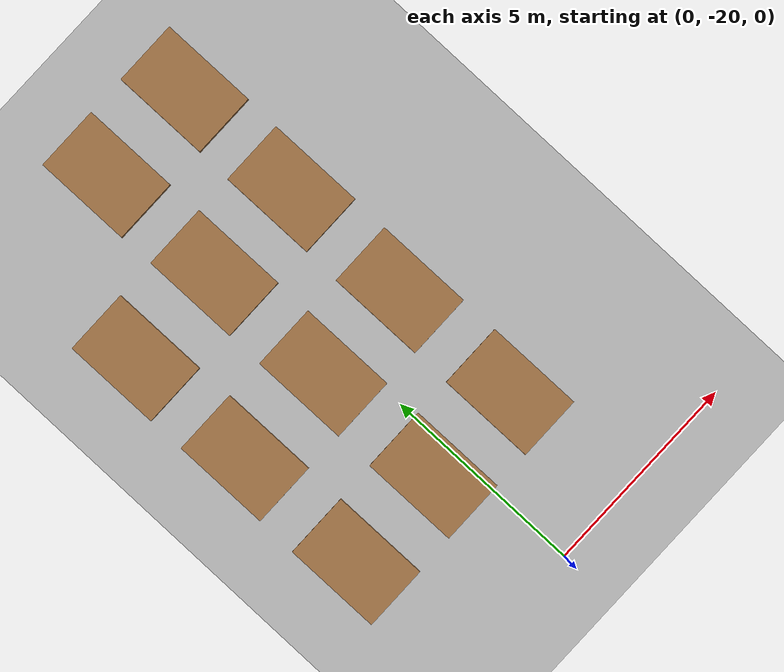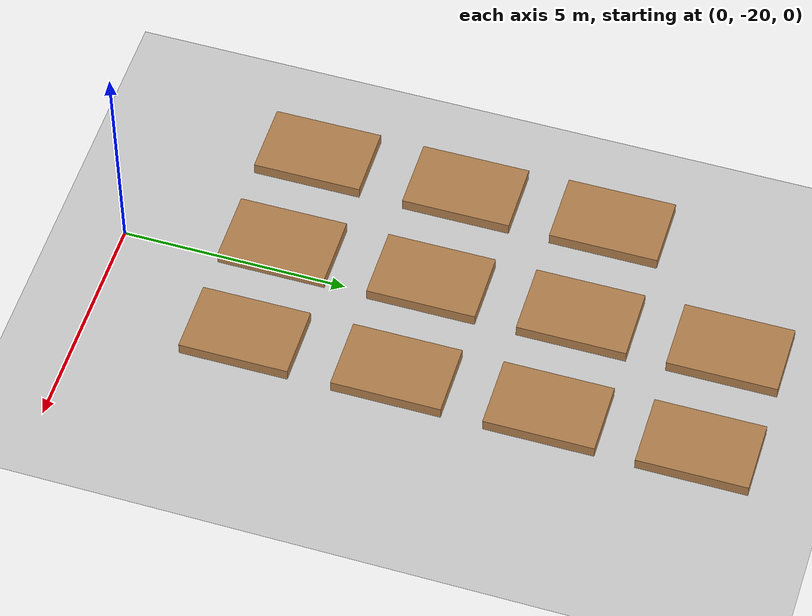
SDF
<sdf version="1.7">
 <world name="default">
  <light name="sun" type="directional">
   <pose>0 0 10 0 -0 0</pose>
   <diffuse>0.8 0.8 0.8 1</diffuse>
   <specular>0.2 0.2 0.2 1</specular>
   <attenuation>
    <range>1000</range>
    <constant>0.9</constant>
    <linear>0.01</linear>
    <quadratic>0.001</quadratic>
   </attenuation>
   <direction>-0.5 0.1 -0.9</direction>
   <spot><inner_angle>0</inner_angle><outer_angle>0</outer_angle><falloff>0</falloff></spot>
  </light>
  <model name="ground_plane">
   <static>1</static>
   <link name="link">
    <collision name="collision">
     <geometry><plane><normal>0 0 1</normal><size>100 100</size></plane></geometry>
     <surface><friction><ode><mu>100</mu><mu2>50</mu2></ode></friction></surface>
    </collision>
    <visual name="visual">
     <cast_shadows>0</cast_shadows>
     <geometry><plane><normal>0 0 1</normal><size>100 100</size></plane></geometry>
     <material>
      <script><uri>file://media/materials/scripts/gazebo.material</uri><name>Gazebo/Grey</name></script>
     </material>
    </visual>
   </link>
  </model>
  <gravity>0 0 -9.8</gravity>
  <magnetic_field>6e-06 2.3e-05 -4.2e-05</magnetic_field>
  <atmosphere type="adiabatic"/>
  <physics type="ode">
   <max_step_size>0.001</max_step_size>
   <real_time_factor>1</real_time_factor>
   <real_time_update_rate>1000</real_time_update_rate>
  </physics>
  <scene><ambient>0.4 0.4 0.4 1</ambient><background>0.7 0.7 0.7 1</background><shadows>1</shadows></scene>
  <spherical_coordinates>
   <surface_model>EARTH_WGS84</surface_model>
   <latitude_deg>0</latitude_deg>
   <longitude_deg>0</longitude_deg>
   <elevation>0</elevation>
   <heading_deg>0</heading_deg>
  </spherical_coordinates>
  <model name="wooden_board">
   <link name="base">
    <pose>0 0 0.00523 0 -0 0</pose>
    <inertial>
     <mass>0.2765</mass>
     <inertia>
      <ixx>0.0025148</ixx>
      <ixy>0</ixy>
      <ixz>0</ixz>
      <iyy>0.00024037</iyy>
      <iyz>0</iyz>
      <izz>0.00275013</izz>
     </inertia>
    </inertial>
    <visual name="visual">
     <geometry><box><size>2.4 1.602 0.51046</size></box></geometry>
     <material>
      <script><uri>file://media/materials/scripts/gazebo.material</uri><name>Gazebo/Wood</name></script>
      <shader type="pixel"><normal_map>__default__</normal_map></shader>
      <ambient>1 1 1 1</ambient>
      <diffuse>1 1 1 1</diffuse>
      <specular>0.2 0.2 0.2 1</specular>
      <emissive>0 0 0 1</emissive>
     </material>
    </visual>
    <visual name="tee_nut_4">
     <pose>0 0.116 0 0 -0 0</pose>
     <geometry><cylinder><radius>0.00635</radius><length>0.0105646</length></cylinder></geometry>
     <material>
      <script><uri>file://media/materials/scripts/gazebo.material</uri><name>Gazebo/Grey</name></script>
      <shader type="pixel"><normal_map>__default__</normal_map></shader>
      <ambient>0.3 0.3 0.3 1</ambient>
      <diffuse>0.7 0.7 0.7 1</diffuse>
      <specular>0.01 0.01 0.01 1</specular>
      <emissive>0 0 0 1</emissive>
     </material>
    </visual>
    <visual name="tee_nut_2">
     <pose>0 -0.038 0 0 -0 0</pose>
     <geometry><cylinder><radius>0.00635</radius><length>0.0105646</length></cylinder></geometry>
     <material>
      <script><uri>file://media/materials/scripts/gazebo.material</uri><name>Gazebo/Grey</name></script>
      <shader type="pixel"><normal_map>__default__</normal_map></shader>
      <ambient>0.3 0.3 0.3 1</ambient>
      <diffuse>0.7 0.7 0.7 1</diffuse>
      <specular>0.01 0.01 0.01 1</specular>
      <emissive>0 0 0 1</emissive>
     </material>
    </visual>
    <visual name="tee_nut_3">
     <pose>0 0.038 0 0 -0 0</pose>
     <geometry><cylinder><radius>0.00635</radius><length>0.0105646</length></cylinder></geometry>
     <material>
      <script><uri>file://media/materials/scripts/gazebo.material</uri><name>Gazebo/Grey</name></script>
      <shader type="pixel"><normal_map>__default__</normal_map></shader>
      <ambient>0.3 0.3 0.3 1</ambient>
      <diffuse>0.7 0.7 0.7 1</diffuse>
      <specular>0.01 0.01 0.01 1</specular>
      <emissive>0 0 0 1</emissive>
     </material>
    </visual>
    <visual name="tee_nut_1">
     <pose>0 -0.116 0 0 -0 0</pose>
     <geometry><cylinder><radius>0.00635</radius><length>0.0105646</length></cylinder></geometry>
     <material>
      <script><uri>file://media/materials/scripts/gazebo.material</uri><name>Gazebo/Grey</name></script>
      <shader type="pixel"><normal_map>__default__</normal_map></shader>
      <ambient>0.3 0.3 0.3 1</ambient>
      <diffuse>0.7 0.7 0.7 1</diffuse>
      <specular>0.01 0.01 0.01 1</specular>
      <emissive>0 0 0 1</emissive>
     </material>
    </visual>
    <collision name="collision">
     <geometry><box><size>0.1016 0.3302 0.01046</size></box></geometry>
     <surface>
      <friction>
       <ode><mu>1</mu><mu2>1</mu2><fdir1>0 0 0</fdir1><slip1>0</slip1><slip2>0</slip2></ode>
       <torsional>
        <coefficient>1</coefficient>
        <patch_radius>0</patch_radius>
        <surface_radius>0.01</surface_radius>
        <use_patch_radius>0</use_patch_radius>
        <ode><slip>0</slip></ode>
       </torsional>
      </friction>
      <bounce><restitution_coefficient>0</restitution_coefficient><threshold>1e+06</threshold></bounce>
      <contact>
       <collide_without_contact>0</collide_without_contact>
       <collide_without_contact_bitmask>1</collide_without_contact_bitmask>
       <collide_bitmask>1</collide_bitmask>
       <ode>
        <soft_cfm>0</soft_cfm>
        <soft_erp>0.2</soft_erp>
        <kp>100000</kp>
        <kd>100</kd>
        <max_vel>100</max_vel>
        <min_depth>0.001</min_depth>
       </ode>
       <bullet>
        <split_impulse>1</split_impulse>
        <split_impulse_penetration_threshold>-0.01</split_impulse_penetration_threshold>
        <soft_cfm>0</soft_cfm>
        <soft_erp>0.2</soft_erp>
        <kp>100000</kp>
        <kd>100</kd>
       </bullet>
      </contact>
     </surface>
    </collision>
   </link>
   <static>0</static>
   <pose>-0.660944 -16.6265 0 0 0 -1.56617</pose>
  </model>
  <model name="wooden_board_clone">
   <link name="base">
    <pose>0 0 0.00523 0 -0 0</pose>
    <inertial>
     <mass>0.2765</mass>
     <inertia>
      <ixx>0.0025148</ixx>
      <ixy>0</ixy>
      <ixz>0</ixz>
      <iyy>0.00024037</iyy>
      <iyz>0</iyz>
      <izz>0.00275013</izz>
     </inertia>
    </inertial>
    <visual name="visual">
     <geometry><box><size>2.4 1.602 0.51046</size></box></geometry>
     <material>
      <script><uri>file://media/materials/scripts/gazebo.material</uri><name>Gazebo/Wood</name></script>
      <shader type="pixel"><normal_map>__default__</normal_map></shader>
      <ambient>1 1 1 1</ambient>
      <diffuse>1 1 1 1</diffuse>
      <specular>0.2 0.2 0.2 1</specular>
      <emissive>0 0 0 1</emissive>
     </material>
    </visual>
    <visual name="tee_nut_4">
     <pose>0 0.116 0 0 -0 0</pose>
     <geometry><cylinder><radius>0.00635</radius><length>0.0105646</length></cylinder></geometry>
     <material>
      <script><uri>file://media/materials/scripts/gazebo.material</uri><name>Gazebo/Grey</name></script>
      <shader type="pixel"><normal_map>__default__</normal_map></shader>
      <ambient>0.3 0.3 0.3 1</ambient>
      <diffuse>0.7 0.7 0.7 1</diffuse>
      <specular>0.01 0.01 0.01 1</specular>
      <emissive>0 0 0 1</emissive>
     </material>
    </visual>
    <visual name="tee_nut_2">
     <pose>0 -0.038 0 0 -0 0</pose>
     <geometry><cylinder><radius>0.00635</radius><length>0.0105646</length></cylinder></geometry>
     <material>
      <script><uri>file://media/materials/scripts/gazebo.material</uri><name>Gazebo/Grey</name></script>
      <shader type="pixel"><normal_map>__default__</normal_map></shader>
      <ambient>0.3 0.3 0.3 1</ambient>
      <diffuse>0.7 0.7 0.7 1</diffuse>
      <specular>0.01 0.01 0.01 1</specular>
      <emissive>0 0 0 1</emissive>
     </material>
    </visual>
    <visual name="tee_nut_3">
     <pose>0 0.038 0 0 -0 0</pose>
     <geometry><cylinder><radius>0.00635</radius><length>0.0105646</length></cylinder></geometry>
     <material>
      <script><uri>file://media/materials/scripts/gazebo.material</uri><name>Gazebo/Grey</name></script>
      <shader type="pixel"><normal_map>__default__</normal_map></shader>
      <ambient>0.3 0.3 0.3 1</ambient>
      <diffuse>0.7 0.7 0.7 1</diffuse>
      <specular>0.01 0.01 0.01 1</specular>
      <emissive>0 0 0 1</emissive>
     </material>
    </visual>
    <visual name="tee_nut_1">
     <pose>0 -0.116 0 0 -0 0</pose>
     <geometry><cylinder><radius>0.00635</radius><length>0.0105646</length></cylinder></geometry>
     <material>
      <script><uri>file://media/materials/scripts/gazebo.material</uri><name>Gazebo/Grey</name></script>
      <shader type="pixel"><normal_map>__default__</normal_map></shader>
      <ambient>0.3 0.3 0.3 1</ambient>
      <diffuse>0.7 0.7 0.7 1</diffuse>
      <specular>0.01 0.01 0.01 1</specular>
      <emissive>0 0 0 1</emissive>
     </material>
    </visual>
    <collision name="collision">
     <geometry><box><size>0.1016 0.3302 0.01046</size></box></geometry>
     <surface>
      <friction>
       <ode><mu>1</mu><mu2>1</mu2><fdir1>0 0 0</fdir1><slip1>0</slip1><slip2>0</slip2></ode>
       <torsional>
        <coefficient>1</coefficient>
        <patch_radius>0</patch_radius>
        <surface_radius>0.01</surface_radius>
        <use_patch_radius>0</use_patch_radius>
        <ode><slip>0</slip></ode>
       </torsional>
      </friction>
      <bounce><restitution_coefficient>0</restitution_coefficient><threshold>1e+06</threshold></bounce>
      <contact>
       <collide_without_contact>0</collide_without_contact>
       <collide_without_contact_bitmask>1</collide_without_contact_bitmask>
       <collide_bitmask>1</collide_bitmask>
       <ode>
        <soft_cfm>0</soft_cfm>
        <soft_erp>0.2</soft_erp>
        <kp>100000</kp>
        <kd>100</kd>
        <max_vel>100</max_vel>
        <min_depth>0.001</min_depth>
       </ode>
       <bullet>
        <split_impulse>1</split_impulse>
        <split_impulse_penetration_threshold>-0.01</split_impulse_penetration_threshold>
        <soft_cfm>0</soft_cfm>
        <soft_erp>0.2</soft_erp>
        <kp>100000</kp>
        <kd>100</kd>
       </bullet>
      </contact>
     </surface>
    </collision>
   </link>
   <static>0</static>
   <pose>1.86886 -16.6156 0 0 0 -1.56617</pose>
  </model>
  <model name="wooden_board_clone_0">
   <link name="base">
    <pose>0 0 0.00523 0 -0 0</pose>
    <inertial>
     <mass>0.2765</mass>
     <inertia>
      <ixx>0.0025148</ixx>
      <ixy>0</ixy>
      <ixz>0</ixz>
      <iyy>0.00024037</iyy>
      <iyz>0</iyz>
      <izz>0.00275013</izz>
     </inertia>
    </inertial>
    <visual name="visual">
     <geometry><box><size>2.4 1.602 0.51046</size></box></geometry>
     <material>
      <script><uri>file://media/materials/scripts/gazebo.material</uri><name>Gazebo/Wood</name></script>
      <shader type="pixel"><normal_map>__default__</normal_map></shader>
      <ambient>1 1 1 1</ambient>
      <diffuse>1 1 1 1</diffuse>
      <specular>0.2 0.2 0.2 1</specular>
      <emissive>0 0 0 1</emissive>
     </material>
    </visual>
    <visual name="tee_nut_4">
     <pose>0 0.116 0 0 -0 0</pose>
     <geometry><cylinder><radius>0.00635</radius><length>0.0105646</length></cylinder></geometry>
     <material>
      <script><uri>file://media/materials/scripts/gazebo.material</uri><name>Gazebo/Grey</name></script>
      <shader type="pixel"><normal_map>__default__</normal_map></shader>
      <ambient>0.3 0.3 0.3 1</ambient>
      <diffuse>0.7 0.7 0.7 1</diffuse>
      <specular>0.01 0.01 0.01 1</specular>
      <emissive>0 0 0 1</emissive>
     </material>
    </visual>
    <visual name="tee_nut_2">
     <pose>0 -0.038 0 0 -0 0</pose>
     <geometry><cylinder><radius>0.00635</radius><length>0.0105646</length></cylinder></geometry>
     <material>
      <script><uri>file://media/materials/scripts/gazebo.material</uri><name>Gazebo/Grey</name></script>
      <shader type="pixel"><normal_map>__default__</normal_map></shader>
      <ambient>0.3 0.3 0.3 1</ambient>
      <diffuse>0.7 0.7 0.7 1</diffuse>
      <specular>0.01 0.01 0.01 1</specular>
      <emissive>0 0 0 1</emissive>
     </material>
    </visual>
    <visual name="tee_nut_3">
     <pose>0 0.038 0 0 -0 0</pose>
     <geometry><cylinder><radius>0.00635</radius><length>0.0105646</length></cylinder></geometry>
     <material>
      <script><uri>file://media/materials/scripts/gazebo.material</uri><name>Gazebo/Grey</name></script>
      <shader type="pixel"><normal_map>__default__</normal_map></shader>
      <ambient>0.3 0.3 0.3 1</ambient>
      <diffuse>0.7 0.7 0.7 1</diffuse>
      <specular>0.01 0.01 0.01 1</specular>
      <emissive>0 0 0 1</emissive>
     </material>
    </visual>
    <visual name="tee_nut_1">
     <pose>0 -0.116 0 0 -0 0</pose>
     <geometry><cylinder><radius>0.00635</radius><length>0.0105646</length></cylinder></geometry>
     <material>
      <script><uri>file://media/materials/scripts/gazebo.material</uri><name>Gazebo/Grey</name></script>
      <shader type="pixel"><normal_map>__default__</normal_map></shader>
      <ambient>0.3 0.3 0.3 1</ambient>
      <diffuse>0.7 0.7 0.7 1</diffuse>
      <specular>0.01 0.01 0.01 1</specular>
      <emissive>0 0 0 1</emissive>
     </material>
    </visual>
    <collision name="collision">
     <geometry><box><size>0.1016 0.3302 0.01046</size></box></geometry>
     <surface>
      <friction>
       <ode><mu>1</mu><mu2>1</mu2><fdir1>0 0 0</fdir1><slip1>0</slip1><slip2>0</slip2></ode>
       <torsional>
        <coefficient>1</coefficient>
        <patch_radius>0</patch_radius>
        <surface_radius>0.01</surface_radius>
        <use_patch_radius>0</use_patch_radius>
        <ode><slip>0</slip></ode>
       </torsional>
      </friction>
      <bounce><restitution_coefficient>0</restitution_coefficient><threshold>1e+06</threshold></bounce>
      <contact>
       <collide_without_contact>0</collide_without_contact>
       <collide_without_contact_bitmask>1</collide_without_contact_bitmask>
       <collide_bitmask>1</collide_bitmask>
       <ode>
        <soft_cfm>0</soft_cfm>
        <soft_erp>0.2</soft_erp>
        <kp>100000</kp>
        <kd>100</kd>
        <max_vel>100</max_vel>
        <min_depth>0.001</min_depth>
       </ode>
       <bullet>
        <split_impulse>1</split_impulse>
        <split_impulse_penetration_threshold>-0.01</split_impulse_penetration_threshold>
        <soft_cfm>0</soft_cfm>
        <soft_erp>0.2</soft_erp>
        <kp>100000</kp>
        <kd>100</kd>
       </bullet>
      </contact>
     </surface>
    </collision>
   </link>
   <static>0</static>
   <pose>-3.24175 -16.6676 0 0 0 -1.56617</pose>
  </model>
  <model name="wooden_board_clone_clone">
   <link name="base">
    <pose>0 0 0.00523 0 -0 0</pose>
    <inertial>
     <mass>0.2765</mass>
     <inertia>
      <ixx>0.0025148</ixx>
      <ixy>0</ixy>
      <ixz>0</ixz>
      <iyy>0.00024037</iyy>
      <iyz>0</iyz>
      <izz>0.00275013</izz>
     </inertia>
    </inertial>
    <visual name="visual">
     <geometry><box><size>2.4 1.602 0.51046</size></box></geometry>
     <material>
      <script><uri>file://media/materials/scripts/gazebo.material</uri><name>Gazebo/Wood</name></script>
      <shader type="pixel"><normal_map>__default__</normal_map></shader>
      <ambient>1 1 1 1</ambient>
      <diffuse>1 1 1 1</diffuse>
      <specular>0.2 0.2 0.2 1</specular>
      <emissive>0 0 0 1</emissive>
     </material>
    </visual>
    <visual name="tee_nut_4">
     <pose>0 0.116 0 0 -0 0</pose>
     <geometry><cylinder><radius>0.00635</radius><length>0.0105646</length></cylinder></geometry>
     <material>
      <script><uri>file://media/materials/scripts/gazebo.material</uri><name>Gazebo/Grey</name></script>
      <shader type="pixel"><normal_map>__default__</normal_map></shader>
      <ambient>0.3 0.3 0.3 1</ambient>
      <diffuse>0.7 0.7 0.7 1</diffuse>
      <specular>0.01 0.01 0.01 1</specular>
      <emissive>0 0 0 1</emissive>
     </material>
    </visual>
    <visual name="tee_nut_2">
     <pose>0 -0.038 0 0 -0 0</pose>
     <geometry><cylinder><radius>0.00635</radius><length>0.0105646</length></cylinder></geometry>
     <material>
      <script><uri>file://media/materials/scripts/gazebo.material</uri><name>Gazebo/Grey</name></script>
      <shader type="pixel"><normal_map>__default__</normal_map></shader>
      <ambient>0.3 0.3 0.3 1</ambient>
      <diffuse>0.7 0.7 0.7 1</diffuse>
      <specular>0.01 0.01 0.01 1</specular>
      <emissive>0 0 0 1</emissive>
     </material>
    </visual>
    <visual name="tee_nut_3">
     <pose>0 0.038 0 0 -0 0</pose>
     <geometry><cylinder><radius>0.00635</radius><length>0.0105646</length></cylinder></geometry>
     <material>
      <script><uri>file://media/materials/scripts/gazebo.material</uri><name>Gazebo/Grey</name></script>
      <shader type="pixel"><normal_map>__default__</normal_map></shader>
      <ambient>0.3 0.3 0.3 1</ambient>
      <diffuse>0.7 0.7 0.7 1</diffuse>
      <specular>0.01 0.01 0.01 1</specular>
      <emissive>0 0 0 1</emissive>
     </material>
    </visual>
    <visual name="tee_nut_1">
     <pose>0 -0.116 0 0 -0 0</pose>
     <geometry><cylinder><radius>0.00635</radius><length>0.0105646</length></cylinder></geometry>
     <material>
      <script><uri>file://media/materials/scripts/gazebo.material</uri><name>Gazebo/Grey</name></script>
      <shader type="pixel"><normal_map>__default__</normal_map></shader>
      <ambient>0.3 0.3 0.3 1</ambient>
      <diffuse>0.7 0.7 0.7 1</diffuse>
      <specular>0.01 0.01 0.01 1</specular>
      <emissive>0 0 0 1</emissive>
     </material>
    </visual>
    <collision name="collision">
     <geometry><box><size>0.1016 0.3302 0.01046</size></box></geometry>
     <surface>
      <friction>
       <ode><mu>1</mu><mu2>1</mu2><fdir1>0 0 0</fdir1><slip1>0</slip1><slip2>0</slip2></ode>
       <torsional>
        <coefficient>1</coefficient>
        <patch_radius>0</patch_radius>
        <surface_radius>0.01</surface_radius>
        <use_patch_radius>0</use_patch_radius>
        <ode><slip>0</slip></ode>
       </torsional>
      </friction>
      <bounce><restitution_coefficient>0</restitution_coefficient><threshold>1e+06</threshold></bounce>
      <contact>
       <collide_without_contact>0</collide_without_contact>
       <collide_without_contact_bitmask>1</collide_without_contact_bitmask>
       <collide_bitmask>1</collide_bitmask>
       <ode>
        <soft_cfm>0</soft_cfm>
        <soft_erp>0.2</soft_erp>
        <kp>100000</kp>
        <kd>100</kd>
        <max_vel>100</max_vel>
        <min_depth>0.001</min_depth>
       </ode>
       <bullet>
        <split_impulse>1</split_impulse>
        <split_impulse_penetration_threshold>-0.01</split_impulse_penetration_threshold>
        <soft_cfm>0</soft_cfm>
        <soft_erp>0.2</soft_erp>
        <kp>100000</kp>
        <kd>100</kd>
       </bullet>
      </contact>
     </surface>
    </collision>
   </link>
   <static>0</static>
   <pose>1.85895 -13.2666 0 0 0 -1.56617</pose>
  </model>
  <model name="wooden_board_clone_clone_0">
   <link name="base">
    <pose>0 0 0.00523 0 -0 0</pose>
    <inertial>
     <mass>0.2765</mass>
     <inertia>
      <ixx>0.0025148</ixx>
      <ixy>0</ixy>
      <ixz>0</ixz>
      <iyy>0.00024037</iyy>
      <iyz>0</iyz>
      <izz>0.00275013</izz>
     </inertia>
    </inertial>
    <visual name="visual">
     <geometry><box><size>2.4 1.602 0.51046</size></box></geometry>
     <material>
      <script><uri>file://media/materials/scripts/gazebo.material</uri><name>Gazebo/Wood</name></script>
      <shader type="pixel"><normal_map>__default__</normal_map></shader>
      <ambient>1 1 1 1</ambient>
      <diffuse>1 1 1 1</diffuse>
      <specular>0.2 0.2 0.2 1</specular>
      <emissive>0 0 0 1</emissive>
     </material>
    </visual>
    <visual name="tee_nut_4">
     <pose>0 0.116 0 0 -0 0</pose>
     <geometry><cylinder><radius>0.00635</radius><length>0.0105646</length></cylinder></geometry>
     <material>
      <script><uri>file://media/materials/scripts/gazebo.material</uri><name>Gazebo/Grey</name></script>
      <shader type="pixel"><normal_map>__default__</normal_map></shader>
      <ambient>0.3 0.3 0.3 1</ambient>
      <diffuse>0.7 0.7 0.7 1</diffuse>
      <specular>0.01 0.01 0.01 1</specular>
      <emissive>0 0 0 1</emissive>
     </material>
    </visual>
    <visual name="tee_nut_2">
     <pose>0 -0.038 0 0 -0 0</pose>
     <geometry><cylinder><radius>0.00635</radius><length>0.0105646</length></cylinder></geometry>
     <material>
      <script><uri>file://media/materials/scripts/gazebo.material</uri><name>Gazebo/Grey</name></script>
      <shader type="pixel"><normal_map>__default__</normal_map></shader>
      <ambient>0.3 0.3 0.3 1</ambient>
      <diffuse>0.7 0.7 0.7 1</diffuse>
      <specular>0.01 0.01 0.01 1</specular>
      <emissive>0 0 0 1</emissive>
     </material>
    </visual>
    <visual name="tee_nut_3">
     <pose>0 0.038 0 0 -0 0</pose>
     <geometry><cylinder><radius>0.00635</radius><length>0.0105646</length></cylinder></geometry>
     <material>
      <script><uri>file://media/materials/scripts/gazebo.material</uri><name>Gazebo/Grey</name></script>
      <shader type="pixel"><normal_map>__default__</normal_map></shader>
      <ambient>0.3 0.3 0.3 1</ambient>
      <diffuse>0.7 0.7 0.7 1</diffuse>
      <specular>0.01 0.01 0.01 1</specular>
      <emissive>0 0 0 1</emissive>
     </material>
    </visual>
    <visual name="tee_nut_1">
     <pose>0 -0.116 0 0 -0 0</pose>
     <geometry><cylinder><radius>0.00635</radius><length>0.0105646</length></cylinder></geometry>
     <material>
      <script><uri>file://media/materials/scripts/gazebo.material</uri><name>Gazebo/Grey</name></script>
      <shader type="pixel"><normal_map>__default__</normal_map></shader>
      <ambient>0.3 0.3 0.3 1</ambient>
      <diffuse>0.7 0.7 0.7 1</diffuse>
      <specular>0.01 0.01 0.01 1</specular>
      <emissive>0 0 0 1</emissive>
     </material>
    </visual>
    <collision name="collision">
     <geometry><box><size>0.1016 0.3302 0.01046</size></box></geometry>
     <surface>
      <friction>
       <ode><mu>1</mu><mu2>1</mu2><fdir1>0 0 0</fdir1><slip1>0</slip1><slip2>0</slip2></ode>
       <torsional>
        <coefficient>1</coefficient>
        <patch_radius>0</patch_radius>
        <surface_radius>0.01</surface_radius>
        <use_patch_radius>0</use_patch_radius>
        <ode><slip>0</slip></ode>
       </torsional>
      </friction>
      <bounce><restitution_coefficient>0</restitution_coefficient><threshold>1e+06</threshold></bounce>
      <contact>
       <collide_without_contact>0</collide_without_contact>
       <collide_without_contact_bitmask>1</collide_without_contact_bitmask>
       <collide_bitmask>1</collide_bitmask>
       <ode>
        <soft_cfm>0</soft_cfm>
        <soft_erp>0.2</soft_erp>
        <kp>100000</kp>
        <kd>100</kd>
        <max_vel>100</max_vel>
        <min_depth>0.001</min_depth>
       </ode>
       <bullet>
        <split_impulse>1</split_impulse>
        <split_impulse_penetration_threshold>-0.01</split_impulse_penetration_threshold>
        <soft_cfm>0</soft_cfm>
        <soft_erp>0.2</soft_erp>
        <kp>100000</kp>
        <kd>100</kd>
       </bullet>
      </contact>
     </surface>
    </collision>
   </link>
   <static>0</static>
   <pose>-0.663199 -13.2768 0 0 0 -1.56617</pose>
  </model>
  <model name="wooden_board_clone_clone_1">
   <link name="base">
    <pose>0 0 0.00523 0 -0 0</pose>
    <inertial>
     <mass>0.2765</mass>
     <inertia>
      <ixx>0.0025148</ixx>
      <ixy>0</ixy>
      <ixz>0</ixz>
      <iyy>0.00024037</iyy>
      <iyz>0</iyz>
      <izz>0.00275013</izz>
     </inertia>
    </inertial>
    <visual name="visual">
     <geometry><box><size>2.4 1.602 0.51046</size></box></geometry>
     <material>
      <script><uri>file://media/materials/scripts/gazebo.material</uri><name>Gazebo/Wood</name></script>
      <shader type="pixel"><normal_map>__default__</normal_map></shader>
      <ambient>1 1 1 1</ambient>
      <diffuse>1 1 1 1</diffuse>
      <specular>0.2 0.2 0.2 1</specular>
      <emissive>0 0 0 1</emissive>
     </material>
    </visual>
    <visual name="tee_nut_4">
     <pose>0 0.116 0 0 -0 0</pose>
     <geometry><cylinder><radius>0.00635</radius><length>0.0105646</length></cylinder></geometry>
     <material>
      <script><uri>file://media/materials/scripts/gazebo.material</uri><name>Gazebo/Grey</name></script>
      <shader type="pixel"><normal_map>__default__</normal_map></shader>
      <ambient>0.3 0.3 0.3 1</ambient>
      <diffuse>0.7 0.7 0.7 1</diffuse>
      <specular>0.01 0.01 0.01 1</specular>
      <emissive>0 0 0 1</emissive>
     </material>
    </visual>
    <visual name="tee_nut_2">
     <pose>0 -0.038 0 0 -0 0</pose>
     <geometry><cylinder><radius>0.00635</radius><length>0.0105646</length></cylinder></geometry>
     <material>
      <script><uri>file://media/materials/scripts/gazebo.material</uri><name>Gazebo/Grey</name></script>
      <shader type="pixel"><normal_map>__default__</normal_map></shader>
      <ambient>0.3 0.3 0.3 1</ambient>
      <diffuse>0.7 0.7 0.7 1</diffuse>
      <specular>0.01 0.01 0.01 1</specular>
      <emissive>0 0 0 1</emissive>
     </material>
    </visual>
    <visual name="tee_nut_3">
     <pose>0 0.038 0 0 -0 0</pose>
     <geometry><cylinder><radius>0.00635</radius><length>0.0105646</length></cylinder></geometry>
     <material>
      <script><uri>file://media/materials/scripts/gazebo.material</uri><name>Gazebo/Grey</name></script>
      <shader type="pixel"><normal_map>__default__</normal_map></shader>
      <ambient>0.3 0.3 0.3 1</ambient>
      <diffuse>0.7 0.7 0.7 1</diffuse>
      <specular>0.01 0.01 0.01 1</specular>
      <emissive>0 0 0 1</emissive>
     </material>
    </visual>
    <visual name="tee_nut_1">
     <pose>0 -0.116 0 0 -0 0</pose>
     <geometry><cylinder><radius>0.00635</radius><length>0.0105646</length></cylinder></geometry>
     <material>
      <script><uri>file://media/materials/scripts/gazebo.material</uri><name>Gazebo/Grey</name></script>
      <shader type="pixel"><normal_map>__default__</normal_map></shader>
      <ambient>0.3 0.3 0.3 1</ambient>
      <diffuse>0.7 0.7 0.7 1</diffuse>
      <specular>0.01 0.01 0.01 1</specular>
      <emissive>0 0 0 1</emissive>
     </material>
    </visual>
    <collision name="collision">
     <geometry><box><size>0.1016 0.3302 0.01046</size></box></geometry>
     <surface>
      <friction>
       <ode><mu>1</mu><mu2>1</mu2><fdir1>0 0 0</fdir1><slip1>0</slip1><slip2>0</slip2></ode>
       <torsional>
        <coefficient>1</coefficient>
        <patch_radius>0</patch_radius>
        <surface_radius>0.01</surface_radius>
        <use_patch_radius>0</use_patch_radius>
        <ode><slip>0</slip></ode>
       </torsional>
      </friction>
      <bounce><restitution_coefficient>0</restitution_coefficient><threshold>1e+06</threshold></bounce>
      <contact>
       <collide_without_contact>0</collide_without_contact>
       <collide_without_contact_bitmask>1</collide_without_contact_bitmask>
       <collide_bitmask>1</collide_bitmask>
       <ode>
        <soft_cfm>0</soft_cfm>
        <soft_erp>0.2</soft_erp>
        <kp>100000</kp>
        <kd>100</kd>
        <max_vel>100</max_vel>
        <min_depth>0.001</min_depth>
       </ode>
       <bullet>
        <split_impulse>1</split_impulse>
        <split_impulse_penetration_threshold>-0.01</split_impulse_penetration_threshold>
        <soft_cfm>0</soft_cfm>
        <soft_erp>0.2</soft_erp>
        <kp>100000</kp>
        <kd>100</kd>
       </bullet>
      </contact>
     </surface>
    </collision>
   </link>
   <static>0</static>
   <pose>-3.23635 -13.2788 0 0 0 -1.56617</pose>
  </model>
  <model name="wooden_board_clone_clone_clone">
   <link name="base">
    <pose>0 0 0.00523 0 -0 0</pose>
    <inertial>
     <mass>0.2765</mass>
     <inertia>
      <ixx>0.0025148</ixx>
      <ixy>0</ixy>
      <ixz>0</ixz>
      <iyy>0.00024037</iyy>
      <iyz>0</iyz>
      <izz>0.00275013</izz>
     </inertia>
    </inertial>
    <visual name="visual">
     <geometry><box><size>2.4 1.602 0.51046</size></box></geometry>
     <material>
      <script><uri>file://media/materials/scripts/gazebo.material</uri><name>Gazebo/Wood</name></script>
      <shader type="pixel"><normal_map>__default__</normal_map></shader>
      <ambient>1 1 1 1</ambient>
      <diffuse>1 1 1 1</diffuse>
      <specular>0.2 0.2 0.2 1</specular>
      <emissive>0 0 0 1</emissive>
     </material>
    </visual>
    <visual name="tee_nut_4">
     <pose>0 0.116 0 0 -0 0</pose>
     <geometry><cylinder><radius>0.00635</radius><length>0.0105646</length></cylinder></geometry>
     <material>
      <script><uri>file://media/materials/scripts/gazebo.material</uri><name>Gazebo/Grey</name></script>
      <shader type="pixel"><normal_map>__default__</normal_map></shader>
      <ambient>0.3 0.3 0.3 1</ambient>
      <diffuse>0.7 0.7 0.7 1</diffuse>
      <specular>0.01 0.01 0.01 1</specular>
      <emissive>0 0 0 1</emissive>
     </material>
    </visual>
    <visual name="tee_nut_2">
     <pose>0 -0.038 0 0 -0 0</pose>
     <geometry><cylinder><radius>0.00635</radius><length>0.0105646</length></cylinder></geometry>
     <material>
      <script><uri>file://media/materials/scripts/gazebo.material</uri><name>Gazebo/Grey</name></script>
      <shader type="pixel"><normal_map>__default__</normal_map></shader>
      <ambient>0.3 0.3 0.3 1</ambient>
      <diffuse>0.7 0.7 0.7 1</diffuse>
      <specular>0.01 0.01 0.01 1</specular>
      <emissive>0 0 0 1</emissive>
     </material>
    </visual>
    <visual name="tee_nut_3">
     <pose>0 0.038 0 0 -0 0</pose>
     <geometry><cylinder><radius>0.00635</radius><length>0.0105646</length></cylinder></geometry>
     <material>
      <script><uri>file://media/materials/scripts/gazebo.material</uri><name>Gazebo/Grey</name></script>
      <shader type="pixel"><normal_map>__default__</normal_map></shader>
      <ambient>0.3 0.3 0.3 1</ambient>
      <diffuse>0.7 0.7 0.7 1</diffuse>
      <specular>0.01 0.01 0.01 1</specular>
      <emissive>0 0 0 1</emissive>
     </material>
    </visual>
    <visual name="tee_nut_1">
     <pose>0 -0.116 0 0 -0 0</pose>
     <geometry><cylinder><radius>0.00635</radius><length>0.0105646</length></cylinder></geometry>
     <material>
      <script><uri>file://media/materials/scripts/gazebo.material</uri><name>Gazebo/Grey</name></script>
      <shader type="pixel"><normal_map>__default__</normal_map></shader>
      <ambient>0.3 0.3 0.3 1</ambient>
      <diffuse>0.7 0.7 0.7 1</diffuse>
      <specular>0.01 0.01 0.01 1</specular>
      <emissive>0 0 0 1</emissive>
     </material>
    </visual>
    <collision name="collision">
     <geometry><box><size>0.1016 0.3302 0.01046</size></box></geometry>
     <surface>
      <friction>
       <ode><mu>1</mu><mu2>1</mu2><fdir1>0 0 0</fdir1><slip1>0</slip1><slip2>0</slip2></ode>
       <torsional>
        <coefficient>1</coefficient>
        <patch_radius>0</patch_radius>
        <surface_radius>0.01</surface_radius>
        <use_patch_radius>0</use_patch_radius>
        <ode><slip>0</slip></ode>
       </torsional>
      </friction>
      <bounce><restitution_coefficient>0</restitution_coefficient><threshold>1e+06</threshold></bounce>
      <contact>
       <collide_without_contact>0</collide_without_contact>
       <collide_without_contact_bitmask>1</collide_without_contact_bitmask>
       <collide_bitmask>1</collide_bitmask>
       <ode>
        <soft_cfm>0</soft_cfm>
        <soft_erp>0.2</soft_erp>
        <kp>100000</kp>
        <kd>100</kd>
        <max_vel>100</max_vel>
        <min_depth>0.001</min_depth>
       </ode>
       <bullet>
        <split_impulse>1</split_impulse>
        <split_impulse_penetration_threshold>-0.01</split_impulse_penetration_threshold>
        <soft_cfm>0</soft_cfm>
        <soft_erp>0.2</soft_erp>
        <kp>100000</kp>
        <kd>100</kd>
       </bullet>
      </contact>
     </surface>
    </collision>
   </link>
   <static>0</static>
   <pose>1.86942 -9.95407 0 0 0 -1.56617</pose>
  </model>
  <model name="wooden_board_clone_clone_clone_0">
   <link name="base">
    <pose>0 0 0.00523 0 -0 0</pose>
    <inertial>
     <mass>0.2765</mass>
     <inertia>
      <ixx>0.0025148</ixx>
      <ixy>0</ixy>
      <ixz>0</ixz>
      <iyy>0.00024037</iyy>
      <iyz>0</iyz>
      <izz>0.00275013</izz>
     </inertia>
    </inertial>
    <visual name="visual">
     <geometry><box><size>2.4 1.602 0.51046</size></box></geometry>
     <material>
      <script><uri>file://media/materials/scripts/gazebo.material</uri><name>Gazebo/Wood</name></script>
      <shader type="pixel"><normal_map>__default__</normal_map></shader>
      <ambient>1 1 1 1</ambient>
      <diffuse>1 1 1 1</diffuse>
      <specular>0.2 0.2 0.2 1</specular>
      <emissive>0 0 0 1</emissive>
     </material>
    </visual>
    <visual name="tee_nut_4">
     <pose>0 0.116 0 0 -0 0</pose>
     <geometry><cylinder><radius>0.00635</radius><length>0.0105646</length></cylinder></geometry>
     <material>
      <script><uri>file://media/materials/scripts/gazebo.material</uri><name>Gazebo/Grey</name></script>
      <shader type="pixel"><normal_map>__default__</normal_map></shader>
      <ambient>0.3 0.3 0.3 1</ambient>
      <diffuse>0.7 0.7 0.7 1</diffuse>
      <specular>0.01 0.01 0.01 1</specular>
      <emissive>0 0 0 1</emissive>
     </material>
    </visual>
    <visual name="tee_nut_2">
     <pose>0 -0.038 0 0 -0 0</pose>
     <geometry><cylinder><radius>0.00635</radius><length>0.0105646</length></cylinder></geometry>
     <material>
      <script><uri>file://media/materials/scripts/gazebo.material</uri><name>Gazebo/Grey</name></script>
      <shader type="pixel"><normal_map>__default__</normal_map></shader>
      <ambient>0.3 0.3 0.3 1</ambient>
      <diffuse>0.7 0.7 0.7 1</diffuse>
      <specular>0.01 0.01 0.01 1</specular>
      <emissive>0 0 0 1</emissive>
     </material>
    </visual>
    <visual name="tee_nut_3">
     <pose>0 0.038 0 0 -0 0</pose>
     <geometry><cylinder><radius>0.00635</radius><length>0.0105646</length></cylinder></geometry>
     <material>
      <script><uri>file://media/materials/scripts/gazebo.material</uri><name>Gazebo/Grey</name></script>
      <shader type="pixel"><normal_map>__default__</normal_map></shader>
      <ambient>0.3 0.3 0.3 1</ambient>
      <diffuse>0.7 0.7 0.7 1</diffuse>
      <specular>0.01 0.01 0.01 1</specular>
      <emissive>0 0 0 1</emissive>
     </material>
    </visual>
    <visual name="tee_nut_1">
     <pose>0 -0.116 0 0 -0 0</pose>
     <geometry><cylinder><radius>0.00635</radius><length>0.0105646</length></cylinder></geometry>
     <material>
      <script><uri>file://media/materials/scripts/gazebo.material</uri><name>Gazebo/Grey</name></script>
      <shader type="pixel"><normal_map>__default__</normal_map></shader>
      <ambient>0.3 0.3 0.3 1</ambient>
      <diffuse>0.7 0.7 0.7 1</diffuse>
      <specular>0.01 0.01 0.01 1</specular>
      <emissive>0 0 0 1</emissive>
     </material>
    </visual>
    <collision name="collision">
     <geometry><box><size>0.1016 0.3302 0.01046</size></box></geometry>
     <surface>
      <friction>
       <ode><mu>1</mu><mu2>1</mu2><fdir1>0 0 0</fdir1><slip1>0</slip1><slip2>0</slip2></ode>
       <torsional>
        <coefficient>1</coefficient>
        <patch_radius>0</patch_radius>
        <surface_radius>0.01</surface_radius>
        <use_patch_radius>0</use_patch_radius>
        <ode><slip>0</slip></ode>
       </torsional>
      </friction>
      <bounce><restitution_coefficient>0</restitution_coefficient><threshold>1e+06</threshold></bounce>
      <contact>
       <collide_without_contact>0</collide_without_contact>
       <collide_without_contact_bitmask>1</collide_without_contact_bitmask>
       <collide_bitmask>1</collide_bitmask>
       <ode>
        <soft_cfm>0</soft_cfm>
        <soft_erp>0.2</soft_erp>
        <kp>100000</kp>
        <kd>100</kd>
        <max_vel>100</max_vel>
        <min_depth>0.001</min_depth>
       </ode>
       <bullet>
        <split_impulse>1</split_impulse>
        <split_impulse_penetration_threshold>-0.01</split_impulse_penetration_threshold>
        <soft_cfm>0</soft_cfm>
        <soft_erp>0.2</soft_erp>
        <kp>100000</kp>
        <kd>100</kd>
       </bullet>
      </contact>
     </surface>
    </collision>
   </link>
   <static>0</static>
   <pose>1.88307 -6.68727 0 0 0 -1.56617</pose>
  </model>
  <model name="wooden_board_clone_clone_clone_clone">
   <link name="base">
    <pose>0 0 0.00523 0 -0 0</pose>
    <inertial>
     <mass>0.2765</mass>
     <inertia>
      <ixx>0.0025148</ixx>
      <ixy>0</ixy>
      <ixz>0</ixz>
      <iyy>0.00024037</iyy>
      <iyz>0</iyz>
      <izz>0.00275013</izz>
     </inertia>
    </inertial>
    <visual name="visual">
     <geometry><box><size>2.4 1.602 0.51046</size></box></geometry>
     <material>
      <script><uri>file://media/materials/scripts/gazebo.material</uri><name>Gazebo/Wood</name></script>
      <shader type="pixel"><normal_map>__default__</normal_map></shader>
      <ambient>1 1 1 1</ambient>
      <diffuse>1 1 1 1</diffuse>
      <specular>0.2 0.2 0.2 1</specular>
      <emissive>0 0 0 1</emissive>
     </material>
    </visual>
    <visual name="tee_nut_4">
     <pose>0 0.116 0 0 -0 0</pose>
     <geometry><cylinder><radius>0.00635</radius><length>0.0105646</length></cylinder></geometry>
     <material>
      <script><uri>file://media/materials/scripts/gazebo.material</uri><name>Gazebo/Grey</name></script>
      <shader type="pixel"><normal_map>__default__</normal_map></shader>
      <ambient>0.3 0.3 0.3 1</ambient>
      <diffuse>0.7 0.7 0.7 1</diffuse>
      <specular>0.01 0.01 0.01 1</specular>
      <emissive>0 0 0 1</emissive>
     </material>
    </visual>
    <visual name="tee_nut_2">
     <pose>0 -0.038 0 0 -0 0</pose>
     <geometry><cylinder><radius>0.00635</radius><length>0.0105646</length></cylinder></geometry>
     <material>
      <script><uri>file://media/materials/scripts/gazebo.material</uri><name>Gazebo/Grey</name></script>
      <shader type="pixel"><normal_map>__default__</normal_map></shader>
      <ambient>0.3 0.3 0.3 1</ambient>
      <diffuse>0.7 0.7 0.7 1</diffuse>
      <specular>0.01 0.01 0.01 1</specular>
      <emissive>0 0 0 1</emissive>
     </material>
    </visual>
    <visual name="tee_nut_3">
     <pose>0 0.038 0 0 -0 0</pose>
     <geometry><cylinder><radius>0.00635</radius><length>0.0105646</length></cylinder></geometry>
     <material>
      <script><uri>file://media/materials/scripts/gazebo.material</uri><name>Gazebo/Grey</name></script>
      <shader type="pixel"><normal_map>__default__</normal_map></shader>
      <ambient>0.3 0.3 0.3 1</ambient>
      <diffuse>0.7 0.7 0.7 1</diffuse>
      <specular>0.01 0.01 0.01 1</specular>
      <emissive>0 0 0 1</emissive>
     </material>
    </visual>
    <visual name="tee_nut_1">
     <pose>0 -0.116 0 0 -0 0</pose>
     <geometry><cylinder><radius>0.00635</radius><length>0.0105646</length></cylinder></geometry>
     <material>
      <script><uri>file://media/materials/scripts/gazebo.material</uri><name>Gazebo/Grey</name></script>
      <shader type="pixel"><normal_map>__default__</normal_map></shader>
      <ambient>0.3 0.3 0.3 1</ambient>
      <diffuse>0.7 0.7 0.7 1</diffuse>
      <specular>0.01 0.01 0.01 1</specular>
      <emissive>0 0 0 1</emissive>
     </material>
    </visual>
    <collision name="collision">
     <geometry><box><size>0.1016 0.3302 0.01046</size></box></geometry>
     <surface>
      <friction>
       <ode><mu>1</mu><mu2>1</mu2><fdir1>0 0 0</fdir1><slip1>0</slip1><slip2>0</slip2></ode>
       <torsional>
        <coefficient>1</coefficient>
        <patch_radius>0</patch_radius>
        <surface_radius>0.01</surface_radius>
        <use_patch_radius>0</use_patch_radius>
        <ode><slip>0</slip></ode>
       </torsional>
      </friction>
      <bounce><restitution_coefficient>0</restitution_coefficient><threshold>1e+06</threshold></bounce>
      <contact>
       <collide_without_contact>0</collide_without_contact>
       <collide_without_contact_bitmask>1</collide_without_contact_bitmask>
       <collide_bitmask>1</collide_bitmask>
       <ode>
        <soft_cfm>0</soft_cfm>
        <soft_erp>0.2</soft_erp>
        <kp>100000</kp>
        <kd>100</kd>
        <max_vel>100</max_vel>
        <min_depth>0.001</min_depth>
       </ode>
       <bullet>
        <split_impulse>1</split_impulse>
        <split_impulse_penetration_threshold>-0.01</split_impulse_penetration_threshold>
        <soft_cfm>0</soft_cfm>
        <soft_erp>0.2</soft_erp>
        <kp>100000</kp>
        <kd>100</kd>
       </bullet>
      </contact>
     </surface>
    </collision>
   </link>
   <static>0</static>
   <pose>-0.672124 -9.96829 0 0 0 -1.56617</pose>
  </model>
  <model name="wooden_board_clone_clone_clone_clone_0">
   <link name="base">
    <pose>0 0 0.00523 0 -0 0</pose>
    <inertial>
     <mass>0.2765</mass>
     <inertia>
      <ixx>0.0025148</ixx>
      <ixy>0</ixy>
      <ixz>0</ixz>
      <iyy>0.00024037</iyy>
      <iyz>0</iyz>
      <izz>0.00275013</izz>
     </inertia>
    </inertial>
    <visual name="visual">
     <geometry><box><size>2.4 1.602 0.51046</size></box></geometry>
     <material>
      <script><uri>file://media/materials/scripts/gazebo.material</uri><name>Gazebo/Wood</name></script>
      <shader type="pixel"><normal_map>__default__</normal_map></shader>
      <ambient>1 1 1 1</ambient>
      <diffuse>1 1 1 1</diffuse>
      <specular>0.2 0.2 0.2 1</specular>
      <emissive>0 0 0 1</emissive>
     </material>
    </visual>
    <visual name="tee_nut_4">
     <pose>0 0.116 0 0 -0 0</pose>
     <geometry><cylinder><radius>0.00635</radius><length>0.0105646</length></cylinder></geometry>
     <material>
      <script><uri>file://media/materials/scripts/gazebo.material</uri><name>Gazebo/Grey</name></script>
      <shader type="pixel"><normal_map>__default__</normal_map></shader>
      <ambient>0.3 0.3 0.3 1</ambient>
      <diffuse>0.7 0.7 0.7 1</diffuse>
      <specular>0.01 0.01 0.01 1</specular>
      <emissive>0 0 0 1</emissive>
     </material>
    </visual>
    <visual name="tee_nut_2">
     <pose>0 -0.038 0 0 -0 0</pose>
     <geometry><cylinder><radius>0.00635</radius><length>0.0105646</length></cylinder></geometry>
     <material>
      <script><uri>file://media/materials/scripts/gazebo.material</uri><name>Gazebo/Grey</name></script>
      <shader type="pixel"><normal_map>__default__</normal_map></shader>
      <ambient>0.3 0.3 0.3 1</ambient>
      <diffuse>0.7 0.7 0.7 1</diffuse>
      <specular>0.01 0.01 0.01 1</specular>
      <emissive>0 0 0 1</emissive>
     </material>
    </visual>
    <visual name="tee_nut_3">
     <pose>0 0.038 0 0 -0 0</pose>
     <geometry><cylinder><radius>0.00635</radius><length>0.0105646</length></cylinder></geometry>
     <material>
      <script><uri>file://media/materials/scripts/gazebo.material</uri><name>Gazebo/Grey</name></script>
      <shader type="pixel"><normal_map>__default__</normal_map></shader>
      <ambient>0.3 0.3 0.3 1</ambient>
      <diffuse>0.7 0.7 0.7 1</diffuse>
      <specular>0.01 0.01 0.01 1</specular>
      <emissive>0 0 0 1</emissive>
     </material>
    </visual>
    <visual name="tee_nut_1">
     <pose>0 -0.116 0 0 -0 0</pose>
     <geometry><cylinder><radius>0.00635</radius><length>0.0105646</length></cylinder></geometry>
     <material>
      <script><uri>file://media/materials/scripts/gazebo.material</uri><name>Gazebo/Grey</name></script>
      <shader type="pixel"><normal_map>__default__</normal_map></shader>
      <ambient>0.3 0.3 0.3 1</ambient>
      <diffuse>0.7 0.7 0.7 1</diffuse>
      <specular>0.01 0.01 0.01 1</specular>
      <emissive>0 0 0 1</emissive>
     </material>
    </visual>
    <collision name="collision">
     <geometry><box><size>0.1016 0.3302 0.01046</size></box></geometry>
     <surface>
      <friction>
       <ode><mu>1</mu><mu2>1</mu2><fdir1>0 0 0</fdir1><slip1>0</slip1><slip2>0</slip2></ode>
       <torsional>
        <coefficient>1</coefficient>
        <patch_radius>0</patch_radius>
        <surface_radius>0.01</surface_radius>
        <use_patch_radius>0</use_patch_radius>
        <ode><slip>0</slip></ode>
       </torsional>
      </friction>
      <bounce><restitution_coefficient>0</restitution_coefficient><threshold>1e+06</threshold></bounce>
      <contact>
       <collide_without_contact>0</collide_without_contact>
       <collide_without_contact_bitmask>1</collide_without_contact_bitmask>
       <collide_bitmask>1</collide_bitmask>
       <ode>
        <soft_cfm>0</soft_cfm>
        <soft_erp>0.2</soft_erp>
        <kp>100000</kp>
        <kd>100</kd>
        <max_vel>100</max_vel>
        <min_depth>0.001</min_depth>
       </ode>
       <bullet>
        <split_impulse>1</split_impulse>
        <split_impulse_penetration_threshold>-0.01</split_impulse_penetration_threshold>
        <soft_cfm>0</soft_cfm>
        <soft_erp>0.2</soft_erp>
        <kp>100000</kp>
        <kd>100</kd>
       </bullet>
      </contact>
     </surface>
    </collision>
   </link>
   <static>0</static>
   <pose>-3.25927 -9.97607 0 0 0 -1.56617</pose>
  </model>
  <model name="wooden_board_clone_clone_clone_clone_clone">
   <link name="base">
    <pose>0 0 0.00523 0 -0 0</pose>
    <inertial>
     <mass>0.2765</mass>
     <inertia>
      <ixx>0.0025148</ixx>
      <ixy>0</ixy>
      <ixz>0</ixz>
      <iyy>0.00024037</iyy>
      <iyz>0</iyz>
      <izz>0.00275013</izz>
     </inertia>
    </inertial>
    <visual name="visual">
     <geometry><box><size>2.4 1.602 0.51046</size></box></geometry>
     <material>
      <script><uri>file://media/materials/scripts/gazebo.material</uri><name>Gazebo/Wood</name></script>
      <shader type="pixel"><normal_map>__default__</normal_map></shader>
      <ambient>1 1 1 1</ambient>
      <diffuse>1 1 1 1</diffuse>
      <specular>0.2 0.2 0.2 1</specular>
      <emissive>0 0 0 1</emissive>
     </material>
    </visual>
    <visual name="tee_nut_4">
     <pose>0 0.116 0 0 -0 0</pose>
     <geometry><cylinder><radius>0.00635</radius><length>0.0105646</length></cylinder></geometry>
     <material>
      <script><uri>file://media/materials/scripts/gazebo.material</uri><name>Gazebo/Grey</name></script>
      <shader type="pixel"><normal_map>__default__</normal_map></shader>
      <ambient>0.3 0.3 0.3 1</ambient>
      <diffuse>0.7 0.7 0.7 1</diffuse>
      <specular>0.01 0.01 0.01 1</specular>
      <emissive>0 0 0 1</emissive>
     </material>
    </visual>
    <visual name="tee_nut_2">
     <pose>0 -0.038 0 0 -0 0</pose>
     <geometry><cylinder><radius>0.00635</radius><length>0.0105646</length></cylinder></geometry>
     <material>
      <script><uri>file://media/materials/scripts/gazebo.material</uri><name>Gazebo/Grey</name></script>
      <shader type="pixel"><normal_map>__default__</normal_map></shader>
      <ambient>0.3 0.3 0.3 1</ambient>
      <diffuse>0.7 0.7 0.7 1</diffuse>
      <specular>0.01 0.01 0.01 1</specular>
      <emissive>0 0 0 1</emissive>
     </material>
    </visual>
    <visual name="tee_nut_3">
     <pose>0 0.038 0 0 -0 0</pose>
     <geometry><cylinder><radius>0.00635</radius><length>0.0105646</length></cylinder></geometry>
     <material>
      <script><uri>file://media/materials/scripts/gazebo.material</uri><name>Gazebo/Grey</name></script>
      <shader type="pixel"><normal_map>__default__</normal_map></shader>
      <ambient>0.3 0.3 0.3 1</ambient>
      <diffuse>0.7 0.7 0.7 1</diffuse>
      <specular>0.01 0.01 0.01 1</specular>
      <emissive>0 0 0 1</emissive>
     </material>
    </visual>
    <visual name="tee_nut_1">
     <pose>0 -0.116 0 0 -0 0</pose>
     <geometry><cylinder><radius>0.00635</radius><length>0.0105646</length></cylinder></geometry>
     <material>
      <script><uri>file://media/materials/scripts/gazebo.material</uri><name>Gazebo/Grey</name></script>
      <shader type="pixel"><normal_map>__default__</normal_map></shader>
      <ambient>0.3 0.3 0.3 1</ambient>
      <diffuse>0.7 0.7 0.7 1</diffuse>
      <specular>0.01 0.01 0.01 1</specular>
      <emissive>0 0 0 1</emissive>
     </material>
    </visual>
    <collision name="collision">
     <geometry><box><size>0.1016 0.3302 0.01046</size></box></geometry>
     <surface>
      <friction>
       <ode><mu>1</mu><mu2>1</mu2><fdir1>0 0 0</fdir1><slip1>0</slip1><slip2>0</slip2></ode>
       <torsional>
        <coefficient>1</coefficient>
        <patch_radius>0</patch_radius>
        <surface_radius>0.01</surface_radius>
        <use_patch_radius>0</use_patch_radius>
        <ode><slip>0</slip></ode>
       </torsional>
      </friction>
      <bounce><restitution_coefficient>0</restitution_coefficient><threshold>1e+06</threshold></bounce>
      <contact>
       <collide_without_contact>0</collide_without_contact>
       <collide_without_contact_bitmask>1</collide_without_contact_bitmask>
       <collide_bitmask>1</collide_bitmask>
       <ode>
        <soft_cfm>0</soft_cfm>
        <soft_erp>0.2</soft_erp>
        <kp>100000</kp>
        <kd>100</kd>
        <max_vel>100</max_vel>
        <min_depth>0.001</min_depth>
       </ode>
       <bullet>
        <split_impulse>1</split_impulse>
        <split_impulse_penetration_threshold>-0.01</split_impulse_penetration_threshold>
        <soft_cfm>0</soft_cfm>
        <soft_erp>0.2</soft_erp>
        <kp>100000</kp>
        <kd>100</kd>
       </bullet>
      </contact>
     </surface>
    </collision>
   </link>
   <static>0</static>
   <pose>-0.704901 -6.70776 0 0 0 -1.56617</pose>
  </model>
 </world>
</sdf>
